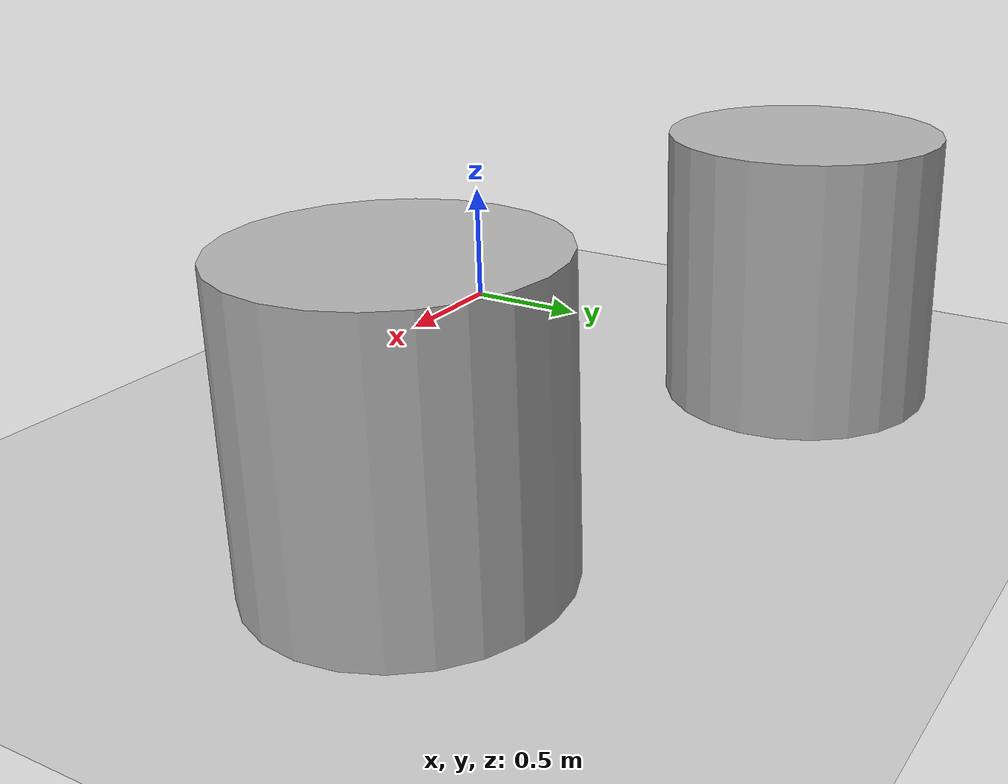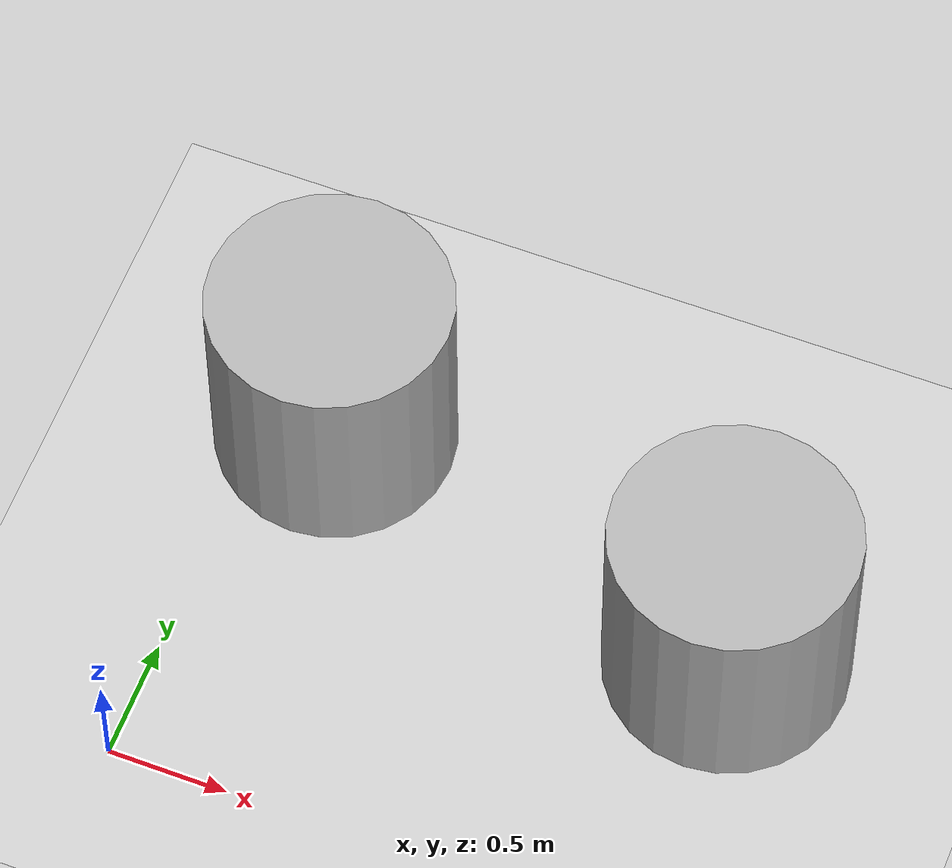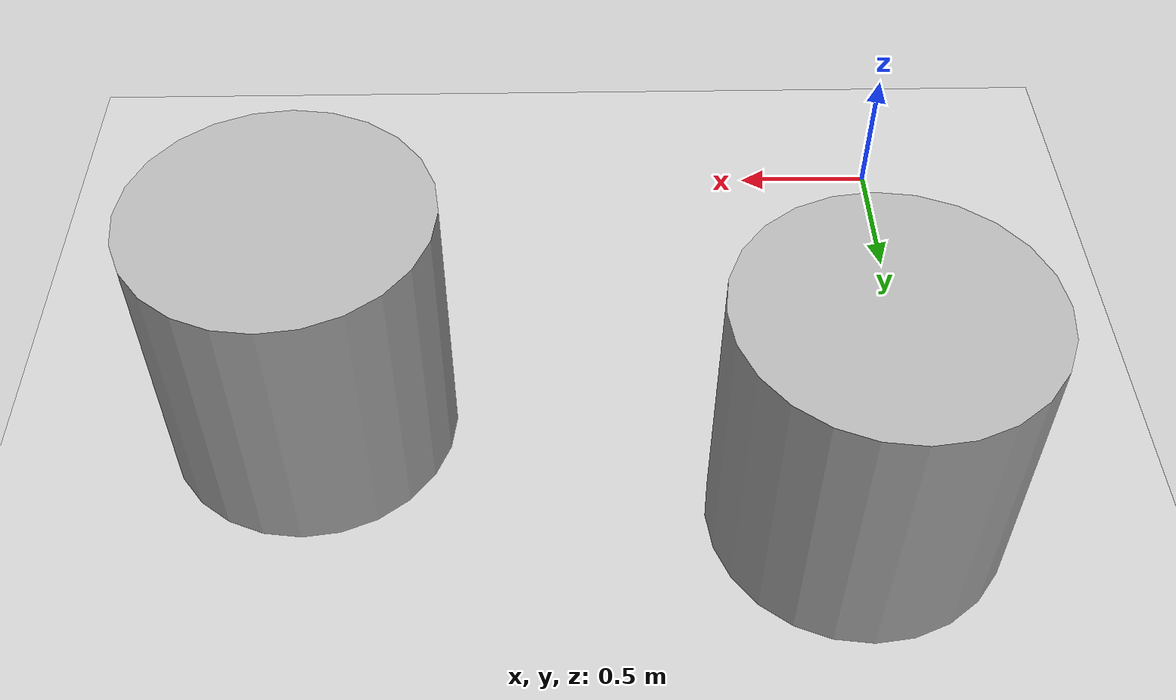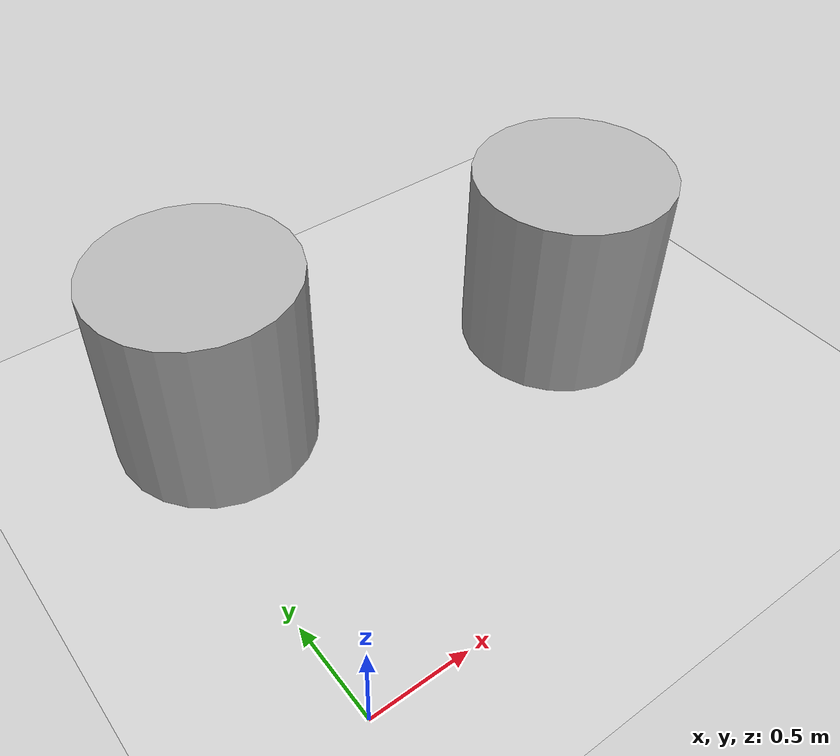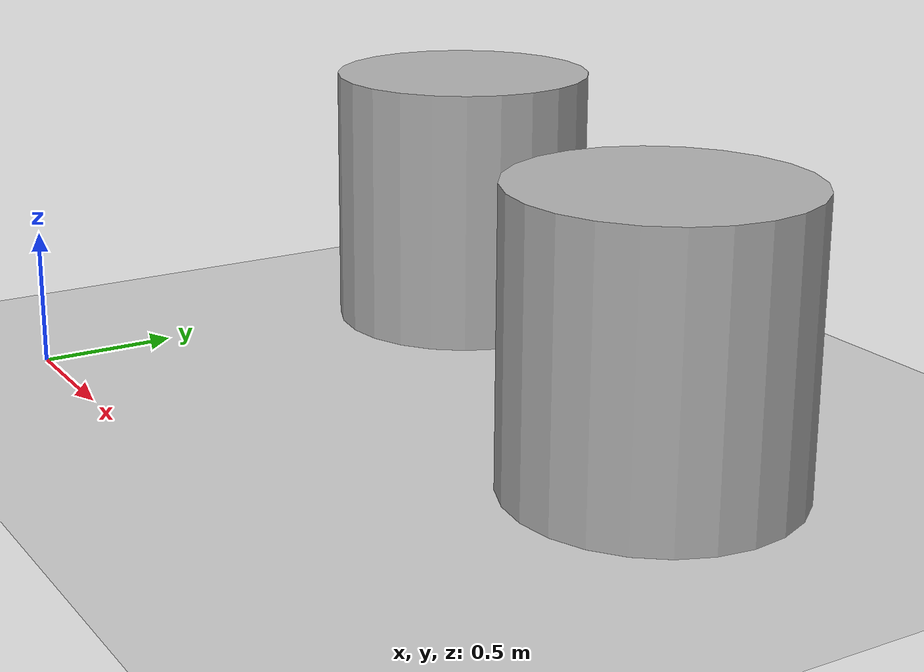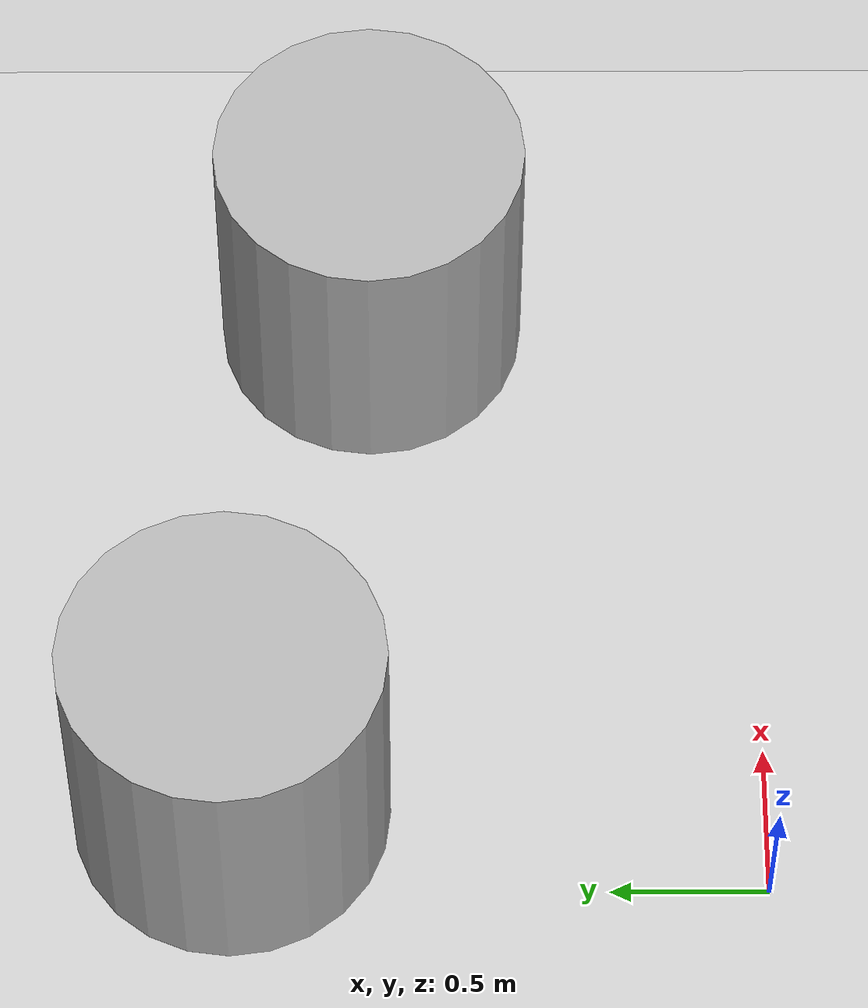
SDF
<sdf version='1.10'>
  <world name='empty'>
    <physics name='1ms' type='ignored'>
      <max_step_size>0.001</max_step_size>
      <real_time_factor>1</real_time_factor>
      <real_time_update_rate>1000</real_time_update_rate>
    </physics>
    <plugin name='gz::sim::systems::Physics' filename='gz-sim-physics-system'/>
    <plugin name='gz::sim::systems::UserCommands' filename='gz-sim-user-commands-system'/>
    <plugin name='gz::sim::systems::SceneBroadcaster' filename='gz-sim-scene-broadcaster-system'/>
    <plugin name='gz::sim::systems::Sensors' filename='gz-sim-sensors-system'>
      <render_engine>ogre2</render_engine>
    </plugin>
    <plugin name='gz::sim::systems::Contact' filename='gz-sim-contact-system'/>
    <gravity>0 0 -9.8000000000000007</gravity>
    <magnetic_field>5.5644999999999998e-06 2.2875799999999999e-05 -4.2388400000000002e-05</magnetic_field>
    <atmosphere type='adiabatic'/>
    <scene>
      <ambient>0.400000006 0.400000006 0.400000006 1</ambient>
      <background>0.699999988 0.699999988 0.699999988 1</background>
      <shadows>true</shadows>
    </scene>
    <model name='ground_plane'>
      <static>true</static>
      <link name='link'>
        <collision name='collision'>
          <geometry>
            <plane>
              <normal>0 0 1</normal>
              <size>100 100</size>
            </plane>
          </geometry>
          <surface>
            <friction>
              <ode/>
            </friction>
            <bounce/>
            <contact/>
          </surface>
        </collision>
        <visual name='visual'>
          <geometry>
            <plane>
              <normal>0 0 1</normal>
              <size>100 100</size>
            </plane>
          </geometry>
          <material>
            <ambient>0.800000012 0.800000012 0.800000012 1</ambient>
            <diffuse>0.800000012 0.800000012 0.800000012 1</diffuse>
            <specular>0.800000012 0.800000012 0.800000012 1</specular>
          </material>
        </visual>
        <pose>0 0 0 0 0 0</pose>
        <inertial>
          <pose>0 0 0 0 0 0</pose>
          <mass>1</mass>
          <inertia>
            <ixx>1</ixx>
            <ixy>0</ixy>
            <ixz>0</ixz>
            <iyy>1</iyy>
            <iyz>0</iyz>
            <izz>1</izz>
          </inertia>
        </inertial>
        <enable_wind>false</enable_wind>
      </link>
      <pose>0 0 0 0 0 0</pose>
      <self_collide>false</self_collide>
    </model>
    <model name='cylinder'>
      <pose>2.1317560462348384 1.2505177018679001 0.49999942638036005 4.0917396110877309e-19 -4.7710072054876544e-19 1.3978711033230717e-20</pose>
      <link name='cylinder_link'>
        <inertial>
          <inertia>
            <ixx>0.14580000000000001</ixx>
            <ixy>0</ixy>
            <ixz>0</ixz>
            <iyy>0.14580000000000001</iyy>
            <iyz>0</iyz>
            <izz>0.125</izz>
          </inertia>
          <mass>1</mass>
          <pose>0 0 0 0 0 0</pose>
        </inertial>
        <collision name='cylinder_collision'>
          <geometry>
            <cylinder>
              <radius>0.5</radius>
              <length>1</length>
            </cylinder>
          </geometry>
          <surface>
            <friction>
              <ode/>
            </friction>
            <bounce/>
            <contact/>
          </surface>
        </collision>
        <visual name='cylinder_visual'>
          <geometry>
            <cylinder>
              <radius>0.5</radius>
              <length>1</length>
            </cylinder>
          </geometry>
          <material>
            <ambient>0.300000012 0.300000012 0.300000012 1</ambient>
            <diffuse>0.699999988 0.699999988 0.699999988 1</diffuse>
            <specular>1 1 1 1</specular>
          </material>
        </visual>
        <pose>0 0 0 0 0 0</pose>
        <enable_wind>false</enable_wind>
      </link>
      <static>false</static>
      <self_collide>false</self_collide>
    </model>
    <model name='cylinder_0'>
      <pose>0.28373040193445176 1.6848481304581284 0.49999942638036005 -6.0494401079053187e-21 -5.6961830709501033e-21 4.9786503169746552e-21</pose>
      <link name='cylinder_link'>
        <inertial>
          <inertia>
            <ixx>0.14580000000000001</ixx>
            <ixy>0</ixy>
            <ixz>0</ixz>
            <iyy>0.14580000000000001</iyy>
            <iyz>0</iyz>
            <izz>0.125</izz>
          </inertia>
          <mass>1</mass>
          <pose>0 0 0 0 0 0</pose>
        </inertial>
        <collision name='cylinder_collision'>
          <geometry>
            <cylinder>
              <radius>0.5</radius>
              <length>1</length>
            </cylinder>
          </geometry>
          <surface>
            <friction>
              <ode/>
            </friction>
            <bounce/>
            <contact/>
          </surface>
        </collision>
        <visual name='cylinder_visual'>
          <geometry>
            <cylinder>
              <radius>0.5</radius>
              <length>1</length>
            </cylinder>
          </geometry>
          <material>
            <ambient>0.300000012 0.300000012 0.300000012 1</ambient>
            <diffuse>0.699999988 0.699999988 0.699999988 1</diffuse>
            <specular>1 1 1 1</specular>
          </material>
        </visual>
        <pose>0 0 0 0 0 0</pose>
        <enable_wind>false</enable_wind>
      </link>
      <static>false</static>
      <self_collide>false</self_collide>
    </model>
    <light name='sun' type='directional'>
      <pose>0 0 10 0 0 0</pose>
      <cast_shadows>true</cast_shadows>
      <intensity>1</intensity>
      <direction>-0.5 0.10000000000000001 -0.90000000000000002</direction>
      <diffuse>0.800000012 0.800000012 0.800000012 1</diffuse>
      <specular>0.200000003 0.200000003 0.200000003 1</specular>
      <attenuation>
        <range>1000</range>
        <linear>0.01</linear>
        <constant>0.90000000000000002</constant>
        <quadratic>0.001</quadratic>
      </attenuation>
      <spot>
        <inner_angle>0</inner_angle>
        <outer_angle>0</outer_angle>
        <falloff>0</falloff>
      </spot>
    </light>
  </world>
</sdf>
